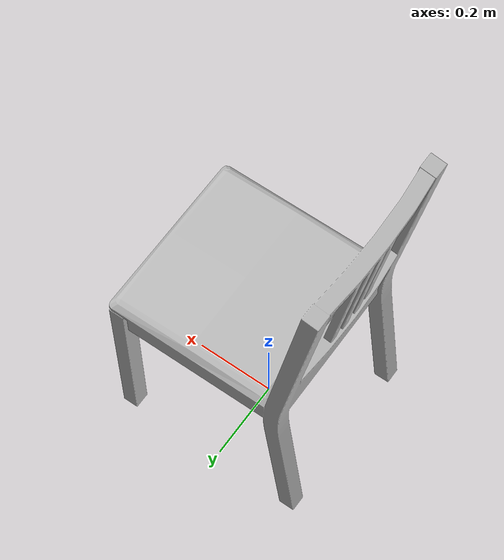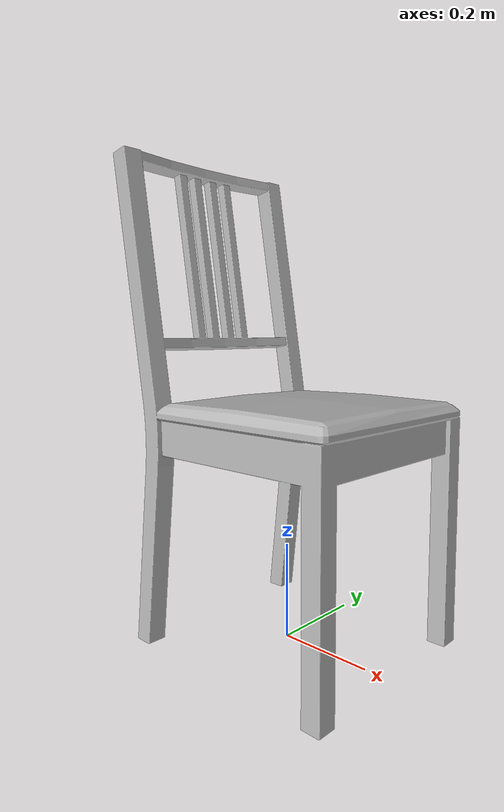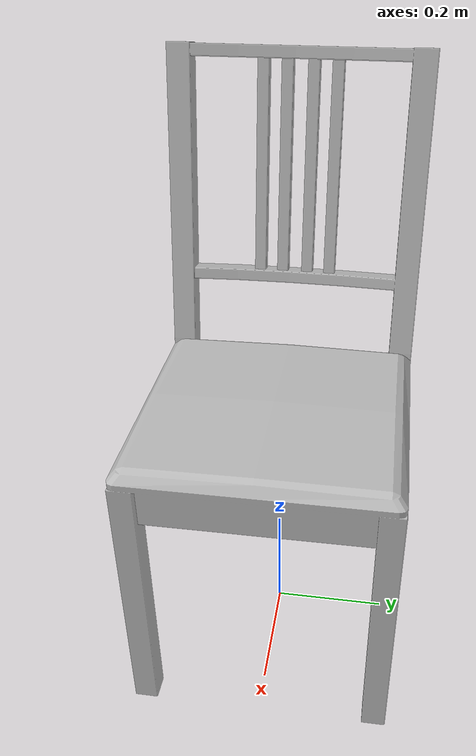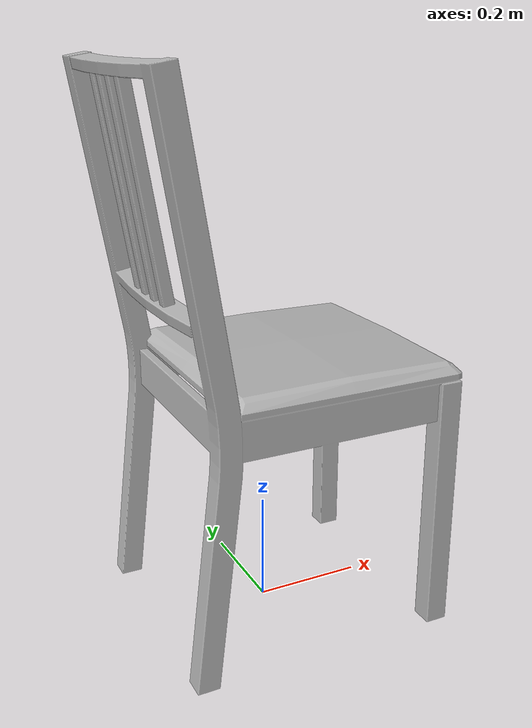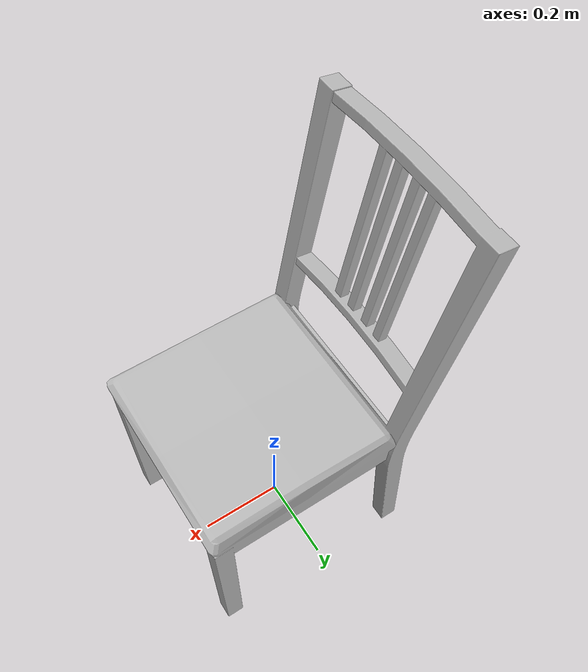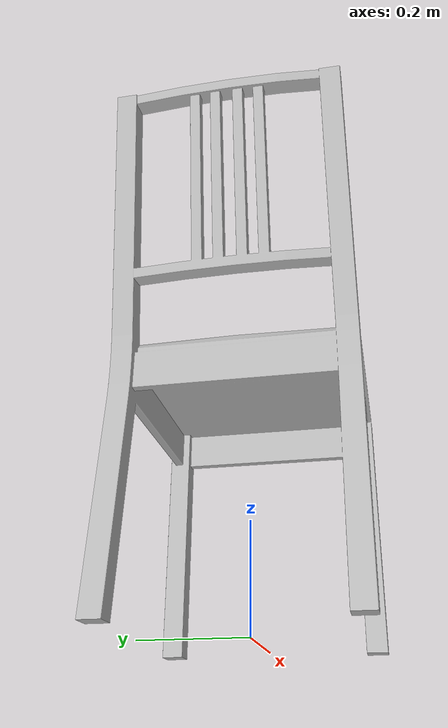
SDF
<?xml version='1.0'?>
<sdf version='1.4'>
  <model name='s__769'>
    <pose>0 0 0 0 0 0</pose>
    <static>true</static>
    <link name='link'>
      <collision name='collision'>
        <pose>0 0 0 0 0 0</pose>
        <geometry>
          <box>
            <size>0.549561 0.44 2</size>
          </box>
        </geometry>
      </collision>
      <visual name='visual'>
        <pose>0 0 0 0 0 0</pose>
        <geometry>
          <mesh><uri>model://s__769/s__769.dae</uri></mesh>
        </geometry>
      </visual>
    </link>
  </model>
</sdf>
